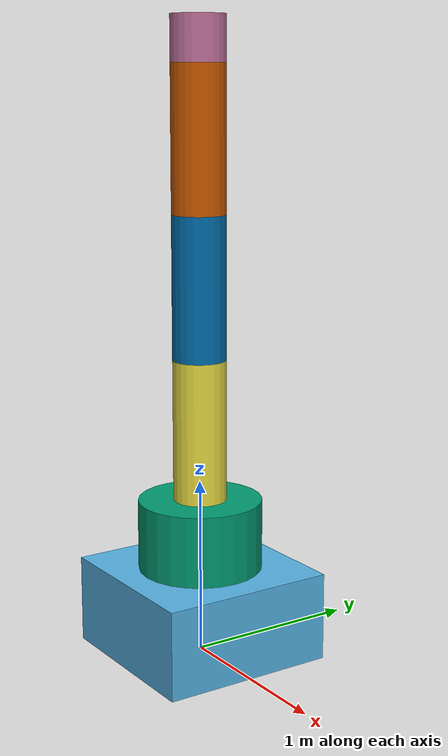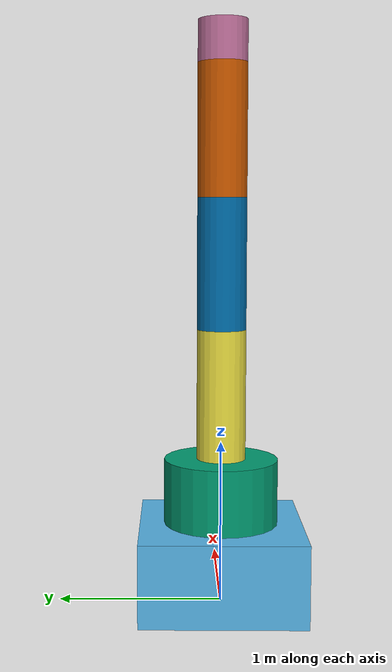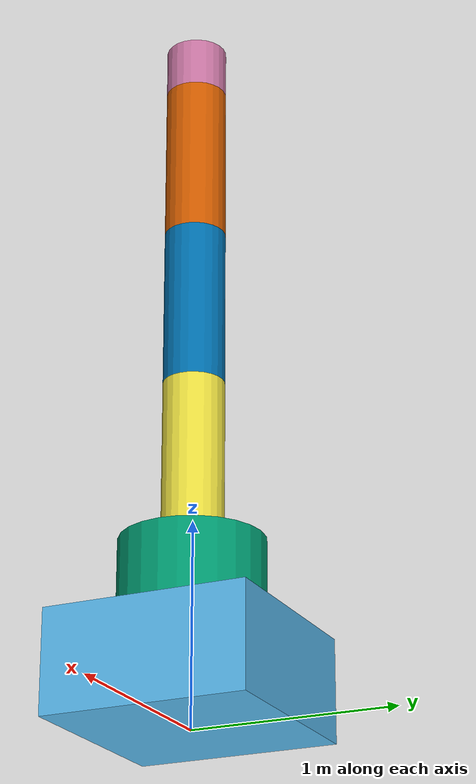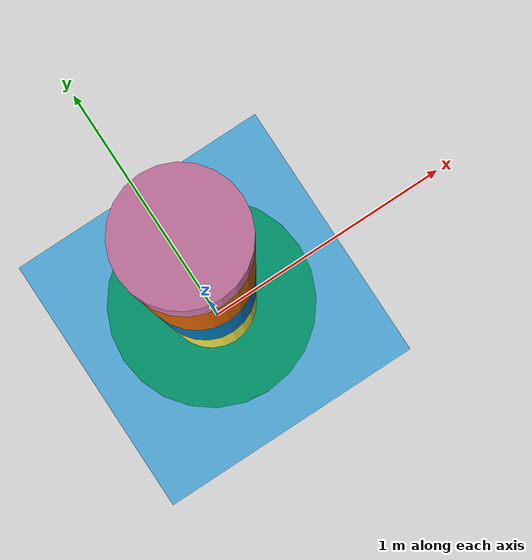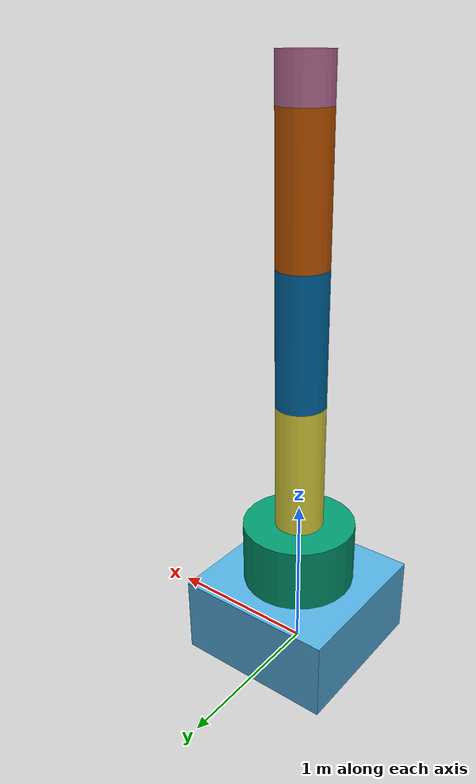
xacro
<?xml version="1.0"?>
<robot name="robot1" xmlns:xacro="http://www.ros.org/wiki/xacro">

  <!-- Start of Includes -->
  <xacro:include filename="$(find rbot_modeling)/urdf/macros2.urdf.xacro"/>
  <!-- End of Includes -->

  <!-- Start of robot description -->
   <!-- Dummy root for KDL -->
<link name="dummy_root"/>

<joint name="basejoint" type="fixed">
  <parent link="dummy_root"/>
  <child link="base_link"/>
  <origin xyz="0 0 0" rpy="0 0 0"/>
</joint>
<!-- END of Dummy root -->

  <link name="base_link">
    <inertial>
      <mass value="1024"/>
      <origin rpy="0 0 0" xyz="0 0 0.25"/>
      <inertia ixx="170.667" ixy="0" ixz="0" iyy="170.667" iyz="0" izz="170.667"/>
    </inertial>
    <collision>
      <origin rpy="0 0 0" xyz="0 0 0.25"/>
      <geometry>
        <box size="1 1 0.5"/>
      </geometry>
    </collision>
    <visual>
      <origin rpy="0 0 0" xyz="0 0 0.25"/>
      <geometry>
        <box size="1 1 0.5"/>
      </geometry>
    </visual>
  </link>

  <xacro:m_joint name="J_0" type="revolute"
                 axis_xyz="0 0 1"
                 origin_rpy="0 0 0" origin_xyz="0 0 0.5"
                 parent="base_link" child="link_01"
                 limit_e="1000" limit_l="-3.14" limit_u="3.14" limit_v="0.5"/>

  <xacro:m_link name="link_01"
                origin_rpy="0 0 0" origin_xyz="0 0 0.2"
                radius="0.35" length="0.4"
                mass="157.633" ixx="13.235" ixy="0" ixz="0" iyy="13.235" iyz="0" izz="9.655"/>

  <xacro:m_joint name="J_1" type="revolute"
                 axis_xyz="0 1 0"
                 origin_rpy="0 0 0" origin_xyz="0 0 0.4"
                 parent="link_01" child="link_02"
                 limit_e="1000" limit_l="-3.14" limit_u="3.14" limit_v="0.5"/>

  <xacro:m_link name="link_02"
                origin_rpy="0 0 0" origin_xyz="0 0 0.4"
                radius="0.15" length="0.8"
                mass="57.906" ixx="12.679" ixy="0" ixz="0" iyy="12.679" iyz="0" izz="0.651"/>

  <xacro:m_joint name="J_2" type="revolute"
                 axis_xyz="0 1 0"
                 origin_rpy="0 0 0" origin_xyz="0 0 0.8"
                 parent="link_02" child="link_03"
                 limit_e="1000" limit_l="-3.14" limit_u="3.14" limit_v="0.5"/>

  <xacro:m_link name="link_03"
                origin_rpy="0 0 0" origin_xyz="0 0 0.4"
                radius="0.15" length="0.8"
                mass="57.906" ixx="12.679" ixy="0" ixz="0" iyy="12.679" iyz="0" izz="0.651"/>

  <xacro:m_joint name="J_3" type="revolute"
                 axis_xyz="0 1 0"
                 origin_rpy="0 0 0" origin_xyz="0 0 0.8"
                 parent="link_03" child="link_04"
                 limit_e="1000" limit_l="-3.14" limit_u="3.14" limit_v="0.5"/>

  <xacro:m_link name="link_04"
                origin_rpy="0 0 0" origin_xyz="0 0 0.4"
                radius="0.15" length="0.8"
                mass="57.906" ixx="12.679" ixy="0" ixz="0" iyy="12.679" iyz="0" izz="0.651"/>

  <xacro:m_joint name="J_4" type="revolute"
                 axis_xyz="0 0 1"
                 origin_rpy="0 0 0" origin_xyz="0 0 0.8"
                 parent="link_04" child="link_05"
                 limit_e="1000" limit_l="-3.14" limit_u="3.14" limit_v="0.5"/>

  <xacro:m_link name="link_05"
                origin_rpy="0 0 0" origin_xyz="0 0 0.125"
                radius="0.15" length="0.25"
                mass="18.056" ixx="0.479" ixy="0" ixz="0" iyy="0.479" iyz="0" izz="0.204"/>

  <!-- End of robot description -->

</robot>

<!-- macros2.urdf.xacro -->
<robot xmlns:xacro="http://www.ros.org/wiki/xacro">

  <xacro:macro name="m_joint" params="name type axis_xyz origin_rpy origin_xyz parent child limit_e limit_l limit_u limit_v">
    <joint name="${name}" type="${type}">
      <axis xyz="${axis_xyz}"/>
      <limit effort="${limit_e}" lower="${limit_l}" upper="${limit_u}" velocity="${limit_v}"/>
      <origin rpy="${origin_rpy}" xyz="${origin_xyz}"/>
      <parent link="${parent}"/>
      <child link="${child}"/>
    </joint>
  </xacro:macro>

  <xacro:macro name="m_link" params="name origin_xyz origin_rpy radius length mass ixx ixy ixz iyy iyz izz">
    <link name="${name}">
      <inertial>
        <mass value="${mass}"/>
        <origin rpy="${origin_rpy}" xyz="${origin_xyz}"/>
        <inertia ixx="${ixx}" ixy="${ixy}" ixz="${ixz}" iyy="${iyy}" iyz="${iyz}" izz="${izz}"/>
      </inertial>
      <collision>
        <origin rpy="${origin_rpy}" xyz="${origin_xyz}"/>
        <geometry>
          <cylinder radius="${radius}" length="${length}"/>
        </geometry>
      </collision>
      <visual>
        <origin rpy="${origin_rpy}" xyz="${origin_xyz}"/>
        <geometry>
          <cylinder radius="${radius}" length="${length}"/>
        </geometry>
      </visual>
    </link>
  </xacro:macro>

</robot>
